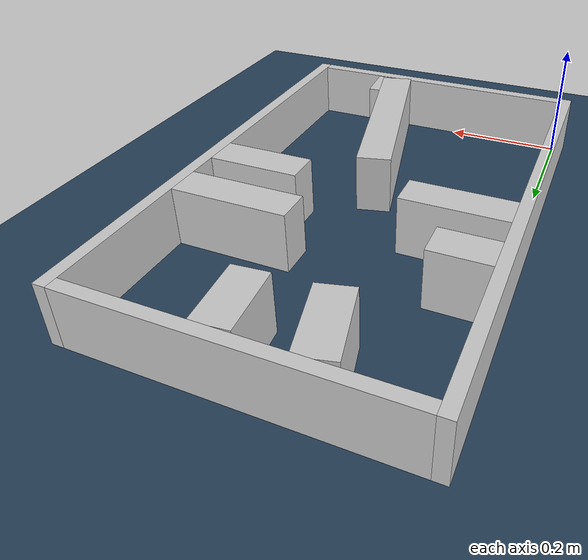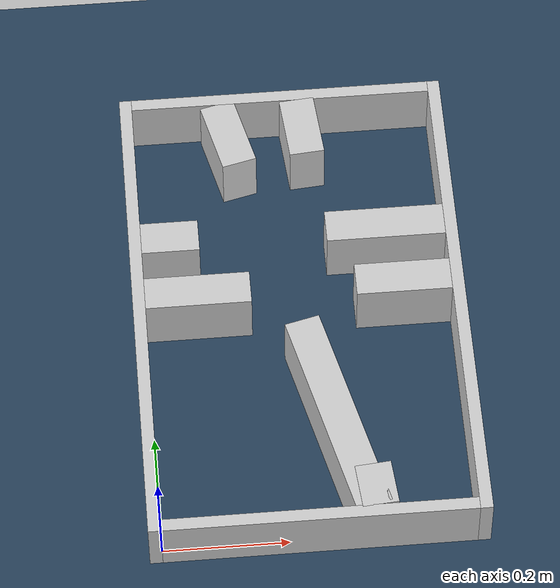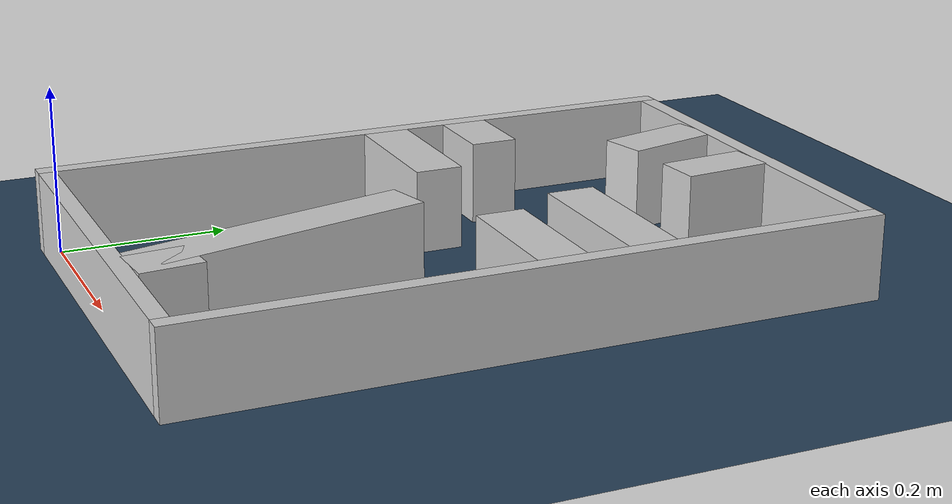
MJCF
<?xml version="1.0" ?>
<mujoco model="generated_real_template">
  <compiler angle="degree"/>
  <option timestep="0.002" integrator="implicitfast" iterations="100" cone="elliptic"/>
  <default>
    <geom density="1"/>
  </default>
  <asset>
    <texture builtin="gradient" height="3072" rgb1="0.3 0.5 0.7" rgb2="0 0 0" type="skybox" width="512"/>
    <texture builtin="checker" height="300" mark="edge" markrgb="0.8 0.8 0.8" name="groundplane" rgb1="0.2 0.3 0.4" rgb2="0.1 0.2 0.3" type="2d" width="300"/>
    <material name="groundplane" reflectance="0.2" texrepeat="5 5" texture="groundplane" texuniform="true"/>
  </asset>
  <worldbody>
    <light dir="0 0 -1" directional="true" pos="0 0 1.5"/>
    <geom name="floor" type="plane" condim="4" friction="0.5 0.005 0.001" material="groundplane" size="0 0 0.05"/>
    <body name="walls">
      <geom name="wall_boundary_left" type="box" condim="4" friction="1.0 0.005 0.0001" rgba="0.8 0.8 0.8 1" pos="-0.010000 0.387500 0.050000" euler="0 0 0.000000" size="0.010000 0.407500 0.050000"/>
      <geom name="wall_boundary_right" type="box" condim="4" friction="1.0 0.005 0.0001" rgba="0.8 0.8 0.8 1" pos="0.500000 0.387500 0.050000" euler="0 0 0.000000" size="0.010000 0.407500 0.050000"/>
      <geom name="wall_boundary_bottom" type="box" condim="4" friction="1.0 0.005 0.0001" rgba="0.8 0.8 0.8 1" pos="0.245000 -0.010000 0.050000" euler="0 0 0.000000" size="0.245000 0.010000 0.050000"/>
      <geom name="wall_boundary_top" type="box" condim="4" friction="1.0 0.005 0.0001" rgba="0.8 0.8 0.8 1" pos="0.245000 0.785000 0.050000" euler="0 0 0.000000" size="0.245000 0.010000 0.050000"/>
      <geom name="wall_inner_1_1" type="box" condim="4" friction="1.0 0.005 0.0001" rgba="0.8 0.8 0.8 1" pos="0.084561 0.413364 0.050000" euler="0 0 0.000000" size="0.084561 0.028500 0.050000"/>
      <geom name="wall_inner_1_2" type="box" condim="4" friction="1.0 0.005 0.0001" rgba="0.8 0.8 0.8 1" pos="0.413575 0.413364 0.050000" euler="0 0 0.000000" size="0.076425 0.028500 0.050000"/>
      <geom name="wall_inner_2_1" type="box" condim="4" friction="1.0 0.005 0.0001" rgba="0.8 0.8 0.8 1" pos="0.276056 0.720996 0.050000" euler="0 0 -85.004041" size="0.054210 0.028500 0.050000"/>
      <geom name="wall_inner_2_2" type="box" condim="4" friction="1.0 0.005 0.0001" rgba="0.8 0.8 0.8 1" pos="0.335923 0.036152 0.050000" euler="0 0 -85.004041" size="0.036290 0.028500 0.050000"/>
      <geom name="wall_inner_3_1" type="box" condim="4" friction="1.0 0.005 0.0001" rgba="0.8 0.8 0.8 1" pos="0.046535 0.519196 0.050000" euler="0 0 0.000000" size="0.046535 0.028500 0.050000"/>
      <geom name="wall_inner_3_2" type="box" condim="4" friction="1.0 0.005 0.0001" rgba="0.8 0.8 0.8 1" pos="0.394146 0.519196 0.050000" euler="0 0 0.000000" size="0.095854 0.028500 0.050000"/>
      <geom name="wall_inner_4_1" type="box" condim="4" friction="1.0 0.005 0.0001" rgba="0.8 0.8 0.8 1" pos="0.287340 0.171808 0.050000" euler="0 0 103.735715" size="0.176866 0.028500 0.050000"/>
      <geom name="wall_inner_4_2" type="box" condim="4" friction="1.0 0.005 0.0001" rgba="0.8 0.8 0.8 1" pos="0.154489 0.715312 0.050000" euler="0 0 103.735715" size="0.061445 0.028500 0.050000"/>
    </body>
  </worldbody>
</mujoco>
